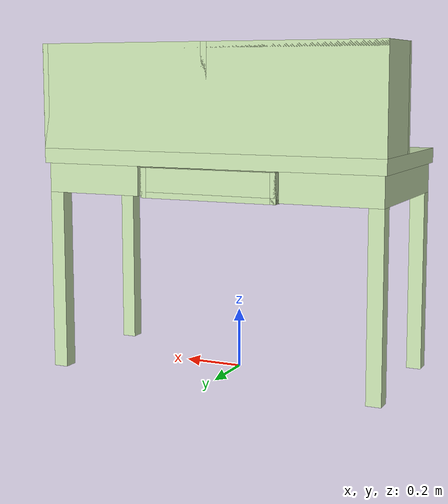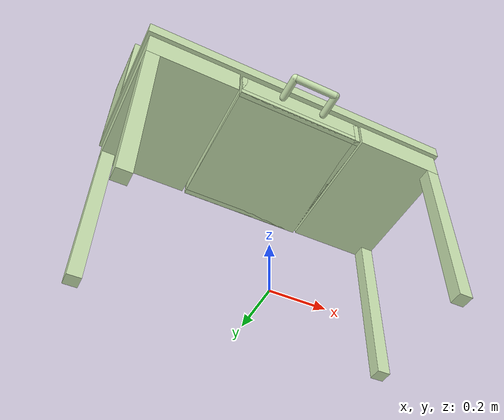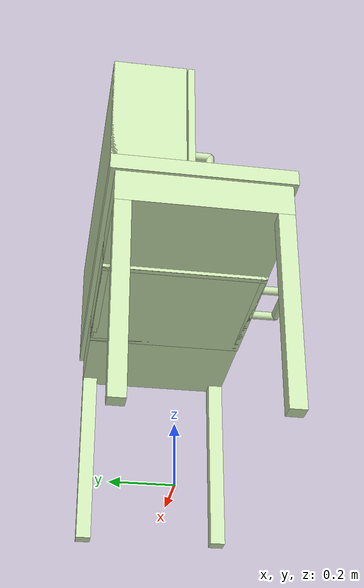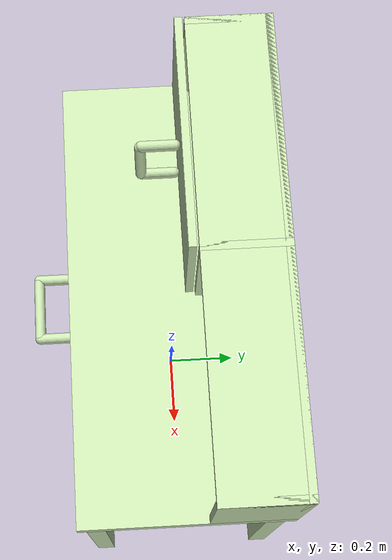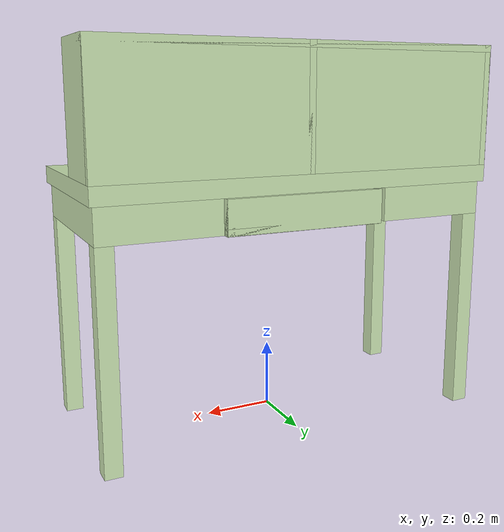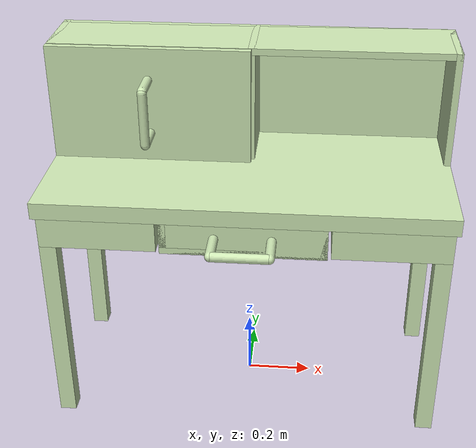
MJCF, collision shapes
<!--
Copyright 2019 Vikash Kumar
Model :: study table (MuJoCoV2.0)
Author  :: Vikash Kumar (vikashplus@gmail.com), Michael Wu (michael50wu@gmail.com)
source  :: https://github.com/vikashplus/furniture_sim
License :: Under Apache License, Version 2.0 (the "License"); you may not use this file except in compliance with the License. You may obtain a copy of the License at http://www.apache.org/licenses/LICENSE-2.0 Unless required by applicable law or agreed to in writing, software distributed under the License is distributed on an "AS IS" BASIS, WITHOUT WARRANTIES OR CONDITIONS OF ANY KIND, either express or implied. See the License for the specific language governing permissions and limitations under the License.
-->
<mujoco model="studyTable">

    <compiler angle="radian" meshdir="" texturedir=""/>
    <include file="../furniture_sim/studyTable/studyTable_asset.xml"/>

    <worldbody>
        <include file="../furniture_sim/studyTable/studyTable_body.xml" />
    </worldbody>

</mujoco>

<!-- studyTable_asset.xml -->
<mujocoinclude>

    <asset>

        <mesh name="studyTable_Main" file="../furniture_sim/studyTable/meshes/studyTable_Main.stl" scale="0.01 0.01 0.01" />
        <mesh name="studyTable_Slide_Wood" file="../furniture_sim/studyTable/meshes/studyTable_Slide_Wood.stl" scale="0.01 0.01 0.01" />
        <mesh name="studyTable_Slide_Handle" file="../furniture_sim/studyTable/meshes/studyTable_Slide_Handle.stl" scale="0.01 0.01 0.01" />
        <mesh name="studyTable_Drawer_Wood" file="../furniture_sim/studyTable/meshes/studyTable_Drawer_Wood.stl" scale="0.01 0.01 0.01" />
        <mesh name="studyTable_Drawer_Handle" file="../furniture_sim/studyTable/meshes/studyTable_Drawer_Handle.stl" scale="0.01 0.01 0.01" />
        <texture name="T_Wood_studyTable" type="cube" height="1" width="1" file="../furniture_sim/studyTable/textures/wood.png" />
        <texture name="T_Metal_studyTable" type="cube" height="1" width="1" file="../furniture_sim/studyTable/textures/metal.png" />

        <material name="M_Wood_studyTable" texture="T_Wood_studyTable" rgba="0.8 0.8 0.8 1" shininess="0.2" reflectance="0.3" texuniform="false" />
        <material name="M_Metal_studyTable" texture="T_Metal_studyTable" texrepeat="3 3" reflectance="0.7" texuniform="false" />

		</asset>

    <default>

        <default class="viz_stl_Metal_studyTable" >
            <geom group="1" contype="0" conaffinity="0" type="mesh" material="M_Metal_studyTable" />
        </default>

         <default class="viz_stl_Wood_studyTable" >
            <geom group="1" contype="0" conaffinity="0" type="mesh" material="M_Wood_studyTable"/>
        </default>

        <default class="drawer_studyTable" >
            <geom contype="1" conaffinity="1" group="3" rgba="1 0 0 1" />
            <joint limited="true" damping="2" frictionloss="5" armature="0.1" />
        </default>

        <default class="body_studyTable" >
            <geom contype="1" conaffinity="1" group="4" rgba="0 1 0 1" />
            <joint limited="true" damping="1" frictionloss="0.5" armature=".01" />
        </default>

   </default>

</mujocoinclude>

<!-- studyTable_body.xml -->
<mujocoinclude>

    <!-- studyTable_Main -->
    <body name="studyTable_Main" pos="0 0 0"  childclass="body_studyTable" >
        <geom class="viz_stl_Wood_studyTable" type="mesh" mesh="studyTable_Main" euler="-1.57 0 3.14"/>
        <geom type="box" size=".6 .275 .025" pos="0 0 0.735" rgba="0.8 0.9 0.7 1.0" mass="40" />
        <geom type="box" size="0.17 0.26 .05" pos="0.42 0 0.66" rgba="0.8 0.9 0.7 1.0" />
        <geom type="box" size="0.17 0.26 .05" pos="-0.42 0 0.66" rgba="0.8 0.9 0.7 1.0" />
        <geom type="box" size="0.025 0.025 0.305" pos="-0.565 0.235 0.305" rgba="0.8 0.9 0.7 1.0" />
        <geom type="box" size="0.025 0.025 0.305" pos="-0.565 -0.235 0.305" rgba="0.8 0.9 0.7 1.0" />
        <geom type="box" size="0.025 0.025 0.305" pos="0.565 0.235 0.305" rgba="0.8 0.9 0.7 1.0" />
        <geom type="box" size="0.025 0.025 0.305" pos="0.565 -0.235 0.305" rgba="0.8 0.9 0.7 1.0" />
        <geom type="box" size="0.6 0.01 0.175" pos="0 0.265 0.935" rgba="0.8 0.9 0.7 1.0" />
        <geom type="box" size="0.6 0.11 0.01" pos="0 0.165 1.1" rgba="0.8 0.9 0.7 1.0" />
        <geom type="box" size="0.01 0.11 0.175" pos="0.59 .165 .935" rgba="0.8 0.9 0.7 1.0" />
        <geom type="box" size="0.01 0.11 0.175" pos="-0.59 .165 .935" rgba="0.8 0.9 0.7 1.0" />
        <geom type="box" size="0.01 0.11 0.175" pos="0 .165 .935" rgba="0.8 0.9 0.7 1.0"/>
    </body>

     <!-- StudyTable_Drawer -->
    <body name="studyTable_Drawer" pos="0 0 0.655" childclass="drawer_studyTable" >
        <geom class="viz_stl_Wood_studyTable" type="mesh" mesh="studyTable_Drawer_Wood" euler="-1.57 0 3.14"/>
        <geom class="viz_stl_Metal_studyTable" type="mesh" mesh="studyTable_Drawer_Handle" euler="-1.57 0 3.14"/>
        <geom type="box" size=".24 .26 .01" pos="0 0 -0.04" rgba="0.8 0.9 0.7 1.0" mass="2" />
        <geom type="box" size=".24 .01 .05" pos="0 .25 0" rgba="0.8 0.9 0.7 1.0" />
        <geom type="box" size=".24 .01 .05" pos="0 -.25 0" rgba="0.8 0.9 0.7 1.0" />
        <geom type="box" size=".01 .26 .05" pos="-.23 0 0" rgba="0.8 0.9 0.7 1.0" />
        <geom type="box" size=".01 .26 .05" pos=".23 0 0" rgba="0.8 0.9 0.7 1.0" />
        <geom type="capsule" size=".014 .045" pos=".08203 -.315 .01" euler="1.57 0 0" rgba="0.8 0.9 0.7 1.0" />
        <geom type="capsule" size=".014 .045" pos="-.08203 -.315 .01" euler="1.57 0 0" rgba="0.8 0.9 0.7 1.0" />
        <geom type="capsule" size=".014 .08" pos="0 -.36 .01" euler="0 1.57 0" rgba="0.8 0.9 0.7 1.0" />
        <joint name="studyTable_Drawer_Joint" type="slide" pos="0 0 0" axis="0 1 0" limited="true" range="-0.48 0" />
    </body>

    <!-- StudyTable_Slide -->
    <body name="studyTable_Slide" pos="-0.3 0.04 0.935" childclass="drawer_studyTable" >
        <geom class="viz_stl_Wood_studyTable" type="mesh" mesh="studyTable_Slide_Wood" euler="-1.57 0 3.14"/>
        <geom class="viz_stl_Metal_studyTable" type="mesh" mesh="studyTable_Slide_Handle" euler="-1.57 0 3.14"/>
        <geom type="box" size=".3 .01 .175" pos="0 0 0" rgba="0.8 0.9 0.7 1.0" mass="1" />
        <geom type="capsule" size=".014 .042" pos="0 -.065 .08302" euler="1.57 0 0" rgba="0.8 0.9 0.7 1.0" />
        <geom type="capsule" size=".014 .042" pos="0 -.065 -.08302" euler="1.57 0 0" rgba="0.8 0.9 0.7 1.0" />
        <geom type="capsule" size=".014 .08" pos="0 -.11 0" euler="0 0 0" rgba="0.8 0.9 0.7 1.0" />
        <site name='slide_handle' type='sphere' size='.01' pos='0 -.11 0'/>
        <joint name="studyTable_Slide_Joint" type="slide" pos="0 0 0" axis="1 0 0" limited="true" range="0 .6" />
    </body>

</mujocoinclude>
